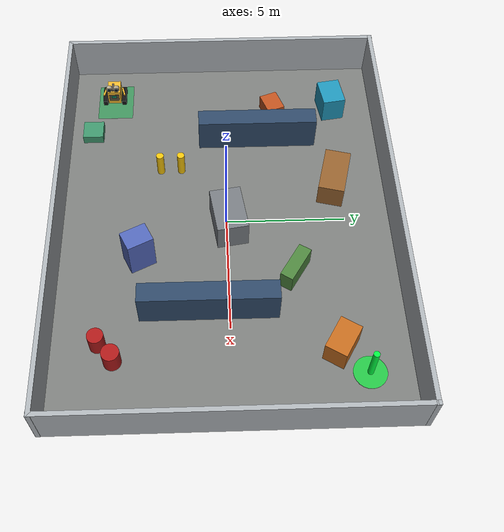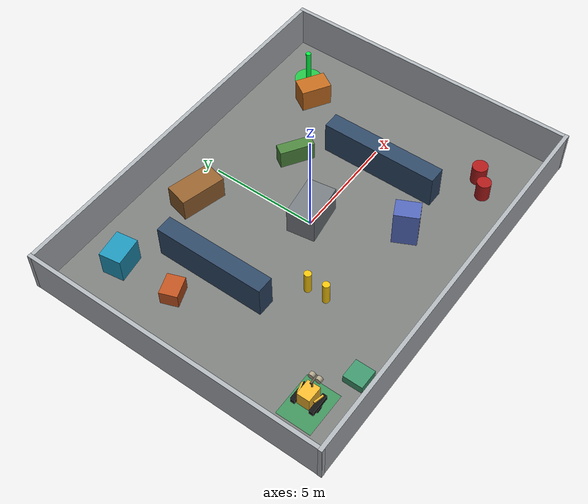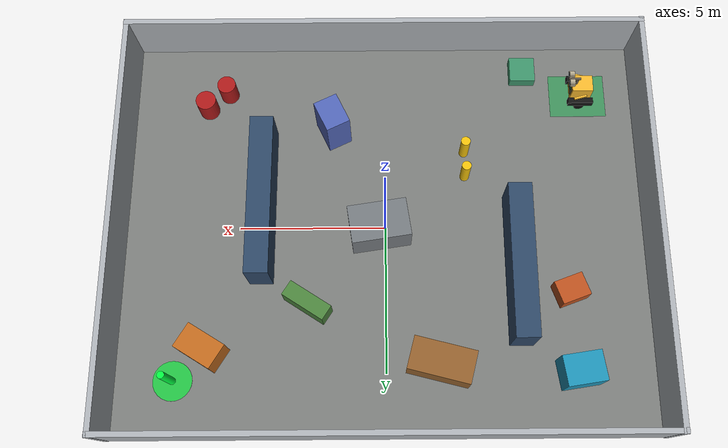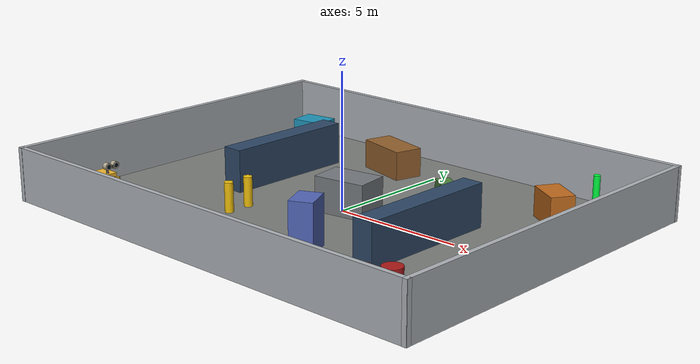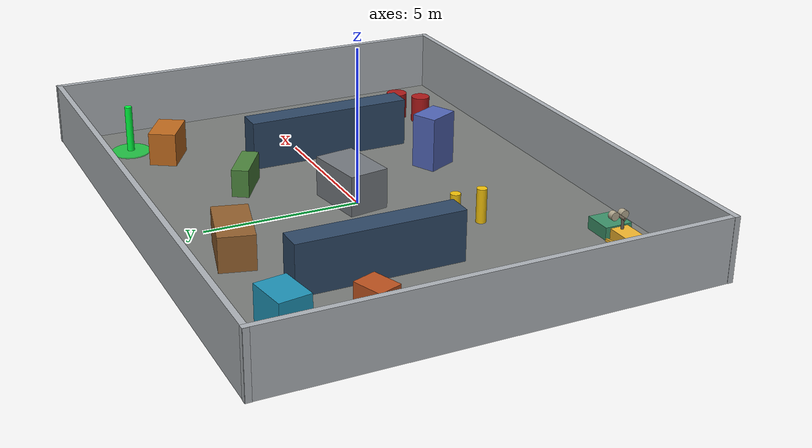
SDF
<?xml version="1.0" ?>
<sdf version="1.6">
  <world name="semantic_spatial_factory_demo">
    <gravity>0 0 -9.81</gravity>
    <magnetic_field>6e-06 2.3e-05 -4.2e-05</magnetic_field>
    <atmosphere type="adiabatic"/>

    <physics name="default_physics" type="ode">
      <max_step_size>0.001</max_step_size>
      <real_time_factor>1.0</real_time_factor>
      <real_time_update_rate>1000</real_time_update_rate>
    </physics>
    <plugin filename="gz-sim-physics-system" name="gz::sim::systems::Physics"/>
    <plugin filename="gz-sim-user-commands-system" name="gz::sim::systems::UserCommands"/>
    <plugin filename="gz-sim-scene-broadcaster-system" name="gz::sim::systems::SceneBroadcaster"/>
    <plugin filename="gz-sim-sensors-system" name="gz::sim::systems::Sensors">
      <render_engine>ogre2</render_engine>
    </plugin>
    <plugin filename="gz-sim-imu-system" name="gz::sim::systems::Imu"/>

    <scene>
      <ambient>0.45 0.45 0.45 1</ambient>
      <background>0.78 0.82 0.86 1</background>
      <shadows>true</shadows>
    </scene>

    <gui fullscreen="0">
      <camera name="demo_camera">
        <pose>8 -9 6 0 0.58 2.35</pose>
        <view_controller>orbit</view_controller>
      </camera>
    </gui>

    <light name="sun" type="directional">
      <cast_shadows>true</cast_shadows>
      <pose>0 0 10 0 0 0</pose>
      <diffuse>0.8 0.8 0.75 1</diffuse>
      <specular>0.2 0.2 0.2 1</specular>
      <attenuation>
        <range>1000</range>
        <constant>0.9</constant>
        <linear>0.01</linear>
        <quadratic>0.001</quadratic>
      </attenuation>
      <direction>-0.45 0.25 -0.86</direction>
    </light>

    <light name="factory_overhead_light_1" type="point">
      <pose>-5 -3 5.5 0 0 0</pose>
      <diffuse>0.75 0.78 0.82 1</diffuse>
      <specular>0.1 0.1 0.1 1</specular>
      <attenuation>
        <range>15</range>
        <constant>0.6</constant>
        <linear>0.08</linear>
        <quadratic>0.01</quadratic>
      </attenuation>
    </light>

    <light name="factory_overhead_light_2" type="point">
      <pose>4 4 5.5 0 0 0</pose>
      <diffuse>0.75 0.78 0.82 1</diffuse>
      <specular>0.1 0.1 0.1 1</specular>
      <attenuation>
        <range>15</range>
        <constant>0.6</constant>
        <linear>0.08</linear>
        <quadratic>0.01</quadratic>
      </attenuation>
    </light>

    <model name="factory_floor">
      <static>true</static>
      <pose>0 0 -0.01 0 0 0</pose>
      <link name="floor_link">
        <collision name="floor_collision">
          <geometry>
            <box>
              <size>18 14 0.02</size>
            </box>
          </geometry>
        </collision>
        <visual name="floor_visual">
          <geometry>
            <box>
              <size>18 14 0.02</size>
            </box>
          </geometry>
          <material>
            <ambient>0.42 0.43 0.42 1</ambient>
            <diffuse>0.48 0.49 0.48 1</diffuse>
            <specular>0.08 0.08 0.08 1</specular>
          </material>
        </visual>
      </link>
    </model>

    <model name="robot_spawn_zone">
      <static>true</static>
      <pose>-7 -5 0.006 0 0 0</pose>
      <link name="spawn_zone_link">
        <visual name="spawn_zone_visual">
          <geometry>
            <box>
              <size>2.0 1.6 0.01</size>
            </box>
          </geometry>
          <material>
            <ambient>0.0 0.45 0.15 0.45</ambient>
            <diffuse>0.0 0.7 0.25 0.45</diffuse>
          </material>
        </visual>
      </link>
    </model>

    <model name="north_wall">
      <static>true</static>
      <pose>0 7 1.0 0 0 0</pose>
      <link name="wall_link">
        <collision name="wall_collision">
          <geometry>
            <box>
              <size>18.2 0.18 2.0</size>
            </box>
          </geometry>
        </collision>
        <visual name="wall_visual">
          <geometry>
            <box>
              <size>18.2 0.18 2.0</size>
            </box>
          </geometry>
          <material>
            <ambient>0.58 0.60 0.62 1</ambient>
            <diffuse>0.68 0.70 0.72 1</diffuse>
          </material>
        </visual>
      </link>
    </model>

    <model name="south_wall">
      <static>true</static>
      <pose>0 -7 1.0 0 0 0</pose>
      <link name="wall_link">
        <collision name="wall_collision">
          <geometry>
            <box>
              <size>18.2 0.18 2.0</size>
            </box>
          </geometry>
        </collision>
        <visual name="wall_visual">
          <geometry>
            <box>
              <size>18.2 0.18 2.0</size>
            </box>
          </geometry>
          <material>
            <ambient>0.58 0.60 0.62 1</ambient>
            <diffuse>0.68 0.70 0.72 1</diffuse>
          </material>
        </visual>
      </link>
    </model>

    <model name="east_wall">
      <static>true</static>
      <pose>9 0 1.0 0 0 0</pose>
      <link name="wall_link">
        <collision name="wall_collision">
          <geometry>
            <box>
              <size>0.18 14.2 2.0</size>
            </box>
          </geometry>
        </collision>
        <visual name="wall_visual">
          <geometry>
            <box>
              <size>0.18 14.2 2.0</size>
            </box>
          </geometry>
          <material>
            <ambient>0.58 0.60 0.62 1</ambient>
            <diffuse>0.68 0.70 0.72 1</diffuse>
          </material>
        </visual>
      </link>
    </model>

    <model name="west_wall">
      <static>true</static>
      <pose>-9 0 1.0 0 0 0</pose>
      <link name="wall_link">
        <collision name="wall_collision">
          <geometry>
            <box>
              <size>0.18 14.2 2.0</size>
            </box>
          </geometry>
        </collision>
        <visual name="wall_visual">
          <geometry>
            <box>
              <size>0.18 14.2 2.0</size>
            </box>
          </geometry>
          <material>
            <ambient>0.58 0.60 0.62 1</ambient>
            <diffuse>0.68 0.70 0.72 1</diffuse>
          </material>
        </visual>
      </link>
    </model>

    <model name="rack_row_left">
      <static>true</static>
      <pose>-4.5 1.5 0.8 0 0 0</pose>
      <link name="rack_link">
        <collision name="rack_collision">
          <geometry>
            <box>
              <size>0.8 5.2 1.6</size>
            </box>
          </geometry>
        </collision>
        <visual name="rack_visual">
          <geometry>
            <box>
              <size>0.8 5.2 1.6</size>
            </box>
          </geometry>
          <material>
            <ambient>0.12 0.18 0.26 1</ambient>
            <diffuse>0.18 0.28 0.40 1</diffuse>
          </material>
        </visual>
      </link>
    </model>

    <model name="rack_row_right">
      <static>true</static>
      <pose>4.2 -0.8 0.8 0 0 0</pose>
      <link name="rack_link">
        <collision name="rack_collision">
          <geometry>
            <box>
              <size>0.8 5.5 1.6</size>
            </box>
          </geometry>
        </collision>
        <visual name="rack_visual">
          <geometry>
            <box>
              <size>0.8 5.5 1.6</size>
            </box>
          </geometry>
          <material>
            <ambient>0.12 0.18 0.26 1</ambient>
            <diffuse>0.18 0.28 0.40 1</diffuse>
          </material>
        </visual>
      </link>
    </model>

    <model name="center_machine_block">
      <static>true</static>
      <pose>0.2 0.1 0.65 0 0 0.15</pose>
      <link name="machine_link">
        <collision name="machine_collision">
          <geometry>
            <box>
              <size>2.0 1.3 1.3</size>
            </box>
          </geometry>
        </collision>
        <visual name="machine_visual">
          <geometry>
            <box>
              <size>2.0 1.3 1.3</size>
            </box>
          </geometry>
          <material>
            <ambient>0.36 0.38 0.40 1</ambient>
            <diffuse>0.46 0.48 0.50 1</diffuse>
          </material>
        </visual>
      </link>
    </model>

    <model name="large_pallet_stack">
      <static>true</static>
      <pose>-1.8 4.7 0.55 0 0 -0.25</pose>
      <link name="pallet_link">
        <collision name="pallet_collision">
          <geometry>
            <box>
              <size>2.1 1.1 1.1</size>
            </box>
          </geometry>
        </collision>
        <visual name="pallet_visual">
          <geometry>
            <box>
              <size>2.1 1.1 1.1</size>
            </box>
          </geometry>
          <material>
            <ambient>0.40 0.26 0.12 1</ambient>
            <diffuse>0.58 0.38 0.18 1</diffuse>
          </material>
        </visual>
      </link>
    </model>

    <model name="crate_cluster_a">
      <static>true</static>
      <pose>-6.2 2.3 0.35 0 0 0.35</pose>
      <link name="crate_link">
        <collision name="crate_collision">
          <geometry>
            <box>
              <size>1.0 0.8 0.7</size>
            </box>
          </geometry>
        </collision>
        <visual name="crate_visual">
          <geometry>
            <box>
              <size>1.0 0.8 0.7</size>
            </box>
          </geometry>
          <material>
            <ambient>0.48 0.20 0.08 1</ambient>
            <diffuse>0.74 0.32 0.12 1</diffuse>
          </material>
        </visual>
      </link>
    </model>

    <model name="crate_cluster_b">
      <static>true</static>
      <pose>6.0 4.2 0.55 0 0 -0.55</pose>
      <link name="crate_link">
        <collision name="crate_collision">
          <geometry>
            <box>
              <size>1.4 0.9 1.1</size>
            </box>
          </geometry>
        </collision>
        <visual name="crate_visual">
          <geometry>
            <box>
              <size>1.4 0.9 1.1</size>
            </box>
          </geometry>
          <material>
            <ambient>0.52 0.26 0.08 1</ambient>
            <diffuse>0.76 0.42 0.12 1</diffuse>
          </material>
        </visual>
      </link>
    </model>

    <model name="low_box_near_spawn">
      <static>true</static>
      <pose>-5.0 -5.9 0.2 0 0 0.0</pose>
      <link name="box_link">
        <collision name="box_collision">
          <geometry>
            <box>
              <size>0.9 0.9 0.4</size>
            </box>
          </geometry>
        </collision>
        <visual name="box_visual">
          <geometry>
            <box>
              <size>0.9 0.9 0.4</size>
            </box>
          </geometry>
          <material>
            <ambient>0.18 0.42 0.30 1</ambient>
            <diffuse>0.24 0.58 0.42 1</diffuse>
          </material>
        </visual>
      </link>
    </model>

    <model name="tall_box_mid_aisle">
      <static>true</static>
      <pose>1.8 -3.6 0.9 0 0 0.45</pose>
      <link name="box_link">
        <collision name="box_collision">
          <geometry>
            <box>
              <size>0.85 1.1 1.8</size>
            </box>
          </geometry>
        </collision>
        <visual name="box_visual">
          <geometry>
            <box>
              <size>0.85 1.1 1.8</size>
            </box>
          </geometry>
          <material>
            <ambient>0.24 0.30 0.52 1</ambient>
            <diffuse>0.32 0.40 0.72 1</diffuse>
          </material>
        </visual>
      </link>
    </model>

    <model name="yellow_safety_bollard_1">
      <static>true</static>
      <pose>-2.8 -2.8 0.55 0 0 0</pose>
      <link name="bollard_link">
        <collision name="bollard_collision">
          <geometry>
            <cylinder>
              <radius>0.16</radius>
              <length>1.1</length>
            </cylinder>
          </geometry>
        </collision>
        <visual name="bollard_visual">
          <geometry>
            <cylinder>
              <radius>0.16</radius>
              <length>1.1</length>
            </cylinder>
          </geometry>
          <material>
            <ambient>0.75 0.58 0.02 1</ambient>
            <diffuse>0.95 0.76 0.04 1</diffuse>
          </material>
        </visual>
      </link>
    </model>

    <model name="yellow_safety_bollard_2">
      <static>true</static>
      <pose>-2.8 -1.9 0.55 0 0 0</pose>
      <link name="bollard_link">
        <collision name="bollard_collision">
          <geometry>
            <cylinder>
              <radius>0.16</radius>
              <length>1.1</length>
            </cylinder>
          </geometry>
        </collision>
        <visual name="bollard_visual">
          <geometry>
            <cylinder>
              <radius>0.16</radius>
              <length>1.1</length>
            </cylinder>
          </geometry>
          <material>
            <ambient>0.75 0.58 0.02 1</ambient>
            <diffuse>0.95 0.76 0.04 1</diffuse>
          </material>
        </visual>
      </link>
    </model>

    <model name="barrel_cluster_1">
      <static>true</static>
      <pose>6.3 -4.5 0.45 0 0 0</pose>
      <link name="barrel_link">
        <collision name="barrel_collision">
          <geometry>
            <cylinder>
              <radius>0.35</radius>
              <length>0.9</length>
            </cylinder>
          </geometry>
        </collision>
        <visual name="barrel_visual">
          <geometry>
            <cylinder>
              <radius>0.35</radius>
              <length>0.9</length>
            </cylinder>
          </geometry>
          <material>
            <ambient>0.42 0.06 0.06 1</ambient>
            <diffuse>0.68 0.10 0.10 1</diffuse>
          </material>
        </visual>
      </link>
    </model>

    <model name="barrel_cluster_2">
      <static>true</static>
      <pose>5.6 -5.1 0.45 0 0 0</pose>
      <link name="barrel_link">
        <collision name="barrel_collision">
          <geometry>
            <cylinder>
              <radius>0.32</radius>
              <length>0.9</length>
            </cylinder>
          </geometry>
        </collision>
        <visual name="barrel_visual">
          <geometry>
            <cylinder>
              <radius>0.32</radius>
              <length>0.9</length>
            </cylinder>
          </geometry>
          <material>
            <ambient>0.42 0.06 0.06 1</ambient>
            <diffuse>0.68 0.10 0.10 1</diffuse>
          </material>
        </visual>
      </link>
    </model>

    <model name="narrow_obstacle_box">
      <static>true</static>
      <pose>2.6 2.7 0.45 0 0 1.0</pose>
      <link name="box_link">
        <collision name="box_collision">
          <geometry>
            <box>
              <size>0.55 1.6 0.9</size>
            </box>
          </geometry>
        </collision>
        <visual name="box_visual">
          <geometry>
            <box>
              <size>0.55 1.6 0.9</size>
            </box>
          </geometry>
          <material>
            <ambient>0.20 0.34 0.16 1</ambient>
            <diffuse>0.30 0.52 0.24 1</diffuse>
          </material>
        </visual>
      </link>
    </model>

    <model name="shipping_bin">
      <static>true</static>
      <pose>-6.3 5.0 0.6 0 0 0.15</pose>
      <link name="bin_link">
        <collision name="bin_collision">
          <geometry>
            <box>
              <size>1.3 1.0 1.2</size>
            </box>
          </geometry>
        </collision>
        <visual name="bin_visual">
          <geometry>
            <box>
              <size>1.3 1.0 1.2</size>
            </box>
          </geometry>
          <material>
            <ambient>0.08 0.38 0.48 1</ambient>
            <diffuse>0.12 0.58 0.72 1</diffuse>
          </material>
        </visual>
      </link>
    </model>

    <model name="arrival_target">
      <static>true</static>
      <pose>7.0 5.2 0.04 0 0 0</pose>
      <link name="target_beacon_link">
        <pose>0 0 0.82 0 0 0</pose>
        <visual name="target_beacon_visual">
          <geometry><cylinder><radius>0.12</radius><length>1.55</length></cylinder></geometry>
          <material>
            <ambient>0.0 0.55 0.12 1</ambient>
            <diffuse>0.0 1.0 0.25 1</diffuse>
            <emissive>0.0 0.35 0.08 1</emissive>
          </material>
        </visual>
      </link>
      <link name="target_link">
        <collision name="target_collision">
          <geometry><cylinder><radius>0.65</radius><length>0.04</length></cylinder></geometry>
        </collision>
        <visual name="target_visual">
          <geometry><cylinder><radius>0.65</radius><length>0.04</length></cylinder></geometry>
          <material>
            <ambient>0.0 0.45 0.10 0.65</ambient>
            <diffuse>0.0 0.95 0.20 0.65</diffuse>
            <emissive>0.0 0.25 0.06 1</emissive>
          </material>
        </visual>
      </link>
    </model>

    <model name="factory_bot">
      <static>false</static>
      <pose>-7.0 -5.0 0.35 0 0 0</pose>

      <link name="base_link">
        <inertial>
          <pose>0 0 -0.16 0 0 0</pose>
          <mass>38.0</mass>
          <inertia>
            <ixx>2.40</ixx>
            <iyy>2.10</iyy>
            <izz>2.80</izz>
            <ixy>0</ixy>
            <ixz>0</ixz>
            <iyz>0</iyz>
          </inertia>
        </inertial>

        <collision name="body_collision">
          <pose>0 0 0.18 0 0 0</pose>
          <geometry><box><size>0.72 0.58 0.36</size></box></geometry>
        </collision>

        <collision name="front_left_skid_collision">
          <pose>0.36 0.30 -0.33 0 0 0</pose>
          <geometry><box><size>0.24 0.10 0.04</size></box></geometry>
          <surface>
            <friction><ode><mu>0.08</mu><mu2>0.08</mu2></ode></friction>
            <contact><ode><kp>100000</kp><kd>10</kd></ode></contact>
          </surface>
        </collision>

        <collision name="front_right_skid_collision">
          <pose>0.36 -0.30 -0.33 0 0 0</pose>
          <geometry><box><size>0.24 0.10 0.04</size></box></geometry>
          <surface>
            <friction><ode><mu>0.08</mu><mu2>0.08</mu2></ode></friction>
            <contact><ode><kp>100000</kp><kd>10</kd></ode></contact>
          </surface>
        </collision>

        <collision name="rear_left_skid_collision">
          <pose>-0.36 0.30 -0.33 0 0 0</pose>
          <geometry><box><size>0.24 0.10 0.04</size></box></geometry>
          <surface>
            <friction><ode><mu>0.08</mu><mu2>0.08</mu2></ode></friction>
            <contact><ode><kp>100000</kp><kd>10</kd></ode></contact>
          </surface>
        </collision>

        <collision name="rear_right_skid_collision">
          <pose>-0.36 -0.30 -0.33 0 0 0</pose>
          <geometry><box><size>0.24 0.10 0.04</size></box></geometry>
          <surface>
            <friction><ode><mu>0.08</mu><mu2>0.08</mu2></ode></friction>
            <contact><ode><kp>100000</kp><kd>10</kd></ode></contact>
          </surface>
        </collision>

        <sensor name="base_imu" type="imu">
          <always_on>true</always_on>
          <update_rate>100</update_rate>
          <topic>/model/factory_bot/imu</topic>
          <pose>0 0 0.20 0 0 0</pose>
        </sensor>

        <visual name="yellow_box_body">
          <pose>0 0 0.35 0 0 0</pose>
          <geometry><box><size>0.72 0.58 0.70</size></box></geometry>
          <material>
            <ambient>0.72 0.52 0.12 1</ambient>
            <diffuse>0.96 0.72 0.18 1</diffuse>
            <specular>0.08 0.07 0.04 1</specular>
          </material>
        </visual>

        <visual name="front_panel">
          <pose>0.365 0 0.38 0 0 0</pose>
          <geometry><box><size>0.018 0.44 0.36</size></box></geometry>
          <material>
            <ambient>0.22 0.20 0.16 1</ambient>
            <diffuse>0.34 0.30 0.22 1</diffuse>
          </material>
        </visual>

        <visual name="chest_display">
          <pose>0.378 0 0.43 0 0 0</pose>
          <geometry><box><size>0.012 0.22 0.11</size></box></geometry>
          <material>
            <ambient>0.02 0.20 0.16 1</ambient>
            <diffuse>0.04 0.55 0.40 1</diffuse>
            <emissive>0.0 0.18 0.12 1</emissive>
          </material>
        </visual>

        <visual name="left_track_visual">
          <pose>0 0.43 0.10 0 0 0</pose>
          <geometry><box><size>0.88 0.20 0.24</size></box></geometry>
          <material><ambient>0.03 0.03 0.03 1</ambient><diffuse>0.07 0.07 0.07 1</diffuse></material>
        </visual>

        <visual name="right_track_visual">
          <pose>0 -0.43 0.10 0 0 0</pose>
          <geometry><box><size>0.88 0.20 0.24</size></box></geometry>
          <material><ambient>0.03 0.03 0.03 1</ambient><diffuse>0.07 0.07 0.07 1</diffuse></material>
        </visual>

        <visual name="neck_post">
          <pose>0.22 0 0.86 0 0 0</pose>
          <geometry><cylinder><radius>0.045</radius><length>0.34</length></cylinder></geometry>
          <material><ambient>0.30 0.28 0.24 1</ambient><diffuse>0.42 0.38 0.32 1</diffuse></material>
        </visual>

        <visual name="head_bar">
          <pose>0.34 0 1.02 0 1.5708 0</pose>
          <geometry><cylinder><radius>0.045</radius><length>0.42</length></cylinder></geometry>
          <material><ambient>0.30 0.28 0.24 1</ambient><diffuse>0.42 0.38 0.32 1</diffuse></material>
        </visual>

        <visual name="left_eye_housing">
          <pose>0.44 0.16 1.04 0 1.5708 0</pose>
          <geometry><cylinder><radius>0.13</radius><length>0.18</length></cylinder></geometry>
          <material><ambient>0.48 0.46 0.40 1</ambient><diffuse>0.70 0.66 0.56 1</diffuse></material>
        </visual>

        <visual name="right_eye_housing">
          <pose>0.44 -0.16 1.04 0 1.5708 0</pose>
          <geometry><cylinder><radius>0.13</radius><length>0.18</length></cylinder></geometry>
          <material><ambient>0.48 0.46 0.40 1</ambient><diffuse>0.70 0.66 0.56 1</diffuse></material>
        </visual>

        <visual name="left_eye_lens">
          <pose>0.535 0.16 1.04 0 1.5708 0</pose>
          <geometry><cylinder><radius>0.083</radius><length>0.012</length></cylinder></geometry>
          <material><ambient>0.02 0.04 0.06 1</ambient><diffuse>0.03 0.07 0.10 1</diffuse><emissive>0.0 0.04 0.08 1</emissive></material>
        </visual>

        <visual name="right_eye_lens">
          <pose>0.535 -0.16 1.04 0 1.5708 0</pose>
          <geometry><cylinder><radius>0.083</radius><length>0.012</length></cylinder></geometry>
          <material><ambient>0.02 0.04 0.06 1</ambient><diffuse>0.03 0.07 0.10 1</diffuse><emissive>0.0 0.04 0.08 1</emissive></material>
        </visual>

        <visual name="left_arm">
          <pose>0.05 0.42 0.43 0 0 0.25</pose>
          <geometry><box><size>0.46 0.07 0.08</size></box></geometry>
          <material><ambient>0.72 0.52 0.12 1</ambient><diffuse>0.96 0.72 0.18 1</diffuse></material>
        </visual>

        <visual name="right_arm">
          <pose>0.05 -0.42 0.43 0 0 -0.25</pose>
          <geometry><box><size>0.46 0.07 0.08</size></box></geometry>
          <material><ambient>0.72 0.52 0.12 1</ambient><diffuse>0.96 0.72 0.18 1</diffuse></material>
        </visual>
      </link>

      <link name="left_wheel">
        <pose>0 0.43 -0.18 -1.5708 0 0</pose>
        <inertial>
          <mass>1.0</mass>
          <inertia><ixx>0.02</ixx><iyy>0.02</iyy><izz>0.02</izz><ixy>0</ixy><ixz>0</ixz><iyz>0</iyz></inertia>
        </inertial>
        <collision name="left_wheel_collision">
          <geometry><cylinder><radius>0.17</radius><length>0.10</length></cylinder></geometry>
          <surface><friction><ode><mu>1.6</mu><mu2>1.6</mu2></ode></friction></surface>
        </collision>
        <visual name="left_wheel_visual">
          <geometry><cylinder><radius>0.17</radius><length>0.12</length></cylinder></geometry>
          <material><ambient>0.01 0.01 0.01 1</ambient><diffuse>0.04 0.04 0.04 1</diffuse></material>
        </visual>
      </link>

      <link name="right_wheel">
        <pose>0 -0.43 -0.18 -1.5708 0 0</pose>
        <inertial>
          <mass>1.0</mass>
          <inertia><ixx>0.02</ixx><iyy>0.02</iyy><izz>0.02</izz><ixy>0</ixy><ixz>0</ixz><iyz>0</iyz></inertia>
        </inertial>
        <collision name="right_wheel_collision">
          <geometry><cylinder><radius>0.17</radius><length>0.10</length></cylinder></geometry>
          <surface><friction><ode><mu>1.6</mu><mu2>1.6</mu2></ode></friction></surface>
        </collision>
        <visual name="right_wheel_visual">
          <geometry><cylinder><radius>0.17</radius><length>0.12</length></cylinder></geometry>
          <material><ambient>0.01 0.01 0.01 1</ambient><diffuse>0.04 0.04 0.04 1</diffuse></material>
        </visual>
      </link>

      <link name="camera_link">
        <pose>0.95 0 1.18 0 0 0</pose>
        <inertial>
          <mass>0.10</mass>
          <inertia><ixx>0.001</ixx><iyy>0.001</iyy><izz>0.001</izz><ixy>0</ixy><ixz>0</ixz><iyz>0</iyz></inertia>
        </inertial>
        <sensor name="rgb_camera" type="camera">
          <always_on>true</always_on>
          <update_rate>20</update_rate>
          <camera>
            <horizontal_fov>1.047</horizontal_fov>
            <image><width>640</width><height>480</height><format>R8G8B8</format></image>
            <clip><near>0.05</near><far>12.0</far></clip>
          </camera>
        </sensor>

        <sensor name="depth_camera" type="depth">
          <always_on>true</always_on>
          <update_rate>20</update_rate>
          <camera>
            <horizontal_fov>1.047</horizontal_fov>
            <image><width>640</width><height>480</height><format>R_FLOAT32</format></image>
            <clip><near>0.15</near><far>8.0</far></clip>
          </camera>
        </sensor>
      </link>

      <joint name="left_wheel_joint" type="revolute">
        <parent>base_link</parent>
        <child>left_wheel</child>
        <axis><xyz>0 0 1</xyz><limit><lower>-1e16</lower><upper>1e16</upper></limit><dynamics><damping>0.2</damping><friction>0.02</friction></dynamics></axis>
      </joint>

      <joint name="right_wheel_joint" type="revolute">
        <parent>base_link</parent>
        <child>right_wheel</child>
        <axis><xyz>0 0 1</xyz><limit><lower>-1e16</lower><upper>1e16</upper></limit><dynamics><damping>0.2</damping><friction>0.02</friction></dynamics></axis>
      </joint>

      <joint name="camera_fixed_joint" type="fixed">
        <parent>base_link</parent>
        <child>camera_link</child>
      </joint>

      <plugin filename="gz-sim-diff-drive-system" name="gz::sim::systems::DiffDrive">
        <left_joint>left_wheel_joint</left_joint>
        <right_joint>right_wheel_joint</right_joint>
        <wheel_separation>0.86</wheel_separation>
        <wheel_radius>0.17</wheel_radius>
        <topic>/model/factory_bot/cmd_vel</topic>
        <odom_topic>/model/factory_bot/odometry</odom_topic>
        <frame_id>odom</frame_id>
        <child_frame_id>base_link</child_frame_id>
        <odom_publish_frequency>20</odom_publish_frequency>
        <max_linear_acceleration>1.0</max_linear_acceleration>
        <min_linear_acceleration>-1.0</min_linear_acceleration>
        <max_angular_acceleration>2.0</max_angular_acceleration>
        <min_angular_acceleration>-2.0</min_angular_acceleration>
        <max_linear_velocity>0.5</max_linear_velocity>
        <min_linear_velocity>-0.5</min_linear_velocity>
        <max_angular_velocity>1.2</max_angular_velocity>
        <min_angular_velocity>-1.2</min_angular_velocity>
      </plugin>
    </model>

  </world>
</sdf>
